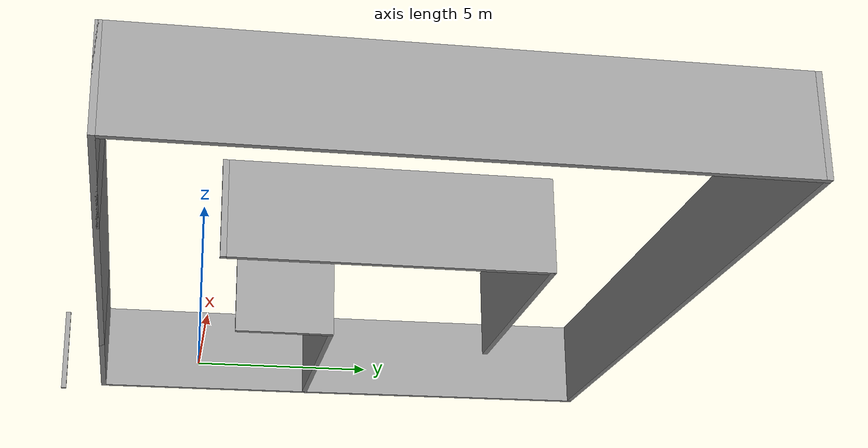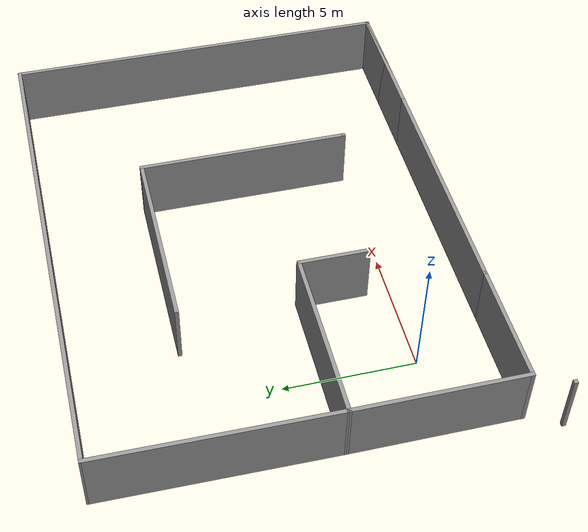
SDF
<?xml version='1.0'?>
<sdf version='1.7'>
  <model name='Mapa1'>
    <pose>6.36905 4.07873 0 0 -0 0</pose>
    <link name='Wall_10'>
      <collision name='Wall_10_Collision'>
        <geometry>
          <box>
            <size>6.75 0.15 2.5</size>
          </box>
        </geometry>
        <pose>0 0 1.25 0 -0 0</pose>
      </collision>
      <visual name='Wall_10_Visual'>
        <pose>0 0 1.25 0 -0 0</pose>
        <geometry>
          <box>
            <size>6.75 0.15 2.5</size>
          </box>
        </geometry>
        <material>
          <script>
            <uri>file://media/materials/scripts/gazebo.material</uri>
            <name>Gazebo/Grey</name>
          </script>
          <ambient>1 1 1 1</ambient>
        </material>
        <meta>
          <layer>0</layer>
        </meta>
      </visual>
      <pose>-6.11846 -0.56705 0 0 -0 0</pose>
    </link>
    <link name='Wall_11'>
      <collision name='Wall_11_Collision'>
        <geometry>
          <box>
            <size>2.75 0.15 2.5</size>
          </box>
        </geometry>
        <pose>0 0 1.25 0 -0 0</pose>
      </collision>
      <visual name='Wall_11_Visual'>
        <pose>0 0 1.25 0 -0 0</pose>
        <geometry>
          <box>
            <size>2.75 0.15 2.5</size>
          </box>
        </geometry>
        <material>
          <script>
            <uri>file://media/materials/scripts/gazebo.material</uri>
            <name>Gazebo/Grey</name>
          </script>
          <ambient>1 1 1 1</ambient>
        </material>
        <meta>
          <layer>0</layer>
        </meta>
      </visual>
      <pose>-2.81846 -1.86705 0 0 -0 -1.5708</pose>
    </link>
    <link name='Wall_14'>
      <collision name='Wall_14_Collision'>
        <geometry>
          <box>
            <size>15 0.15 2.5</size>
          </box>
        </geometry>
        <pose>0 0 1.25 0 -0 0</pose>
      </collision>
      <visual name='Wall_14_Visual'>
        <pose>0 0 1.25 0 -0 0</pose>
        <geometry>
          <box>
            <size>15 0.15 2.5</size>
          </box>
        </geometry>
        <material>
          <script>
            <uri>file://media/materials/scripts/gazebo.material</uri>
            <name>Gazebo/Grey</name>
          </script>
          <ambient>1 1 1 1</ambient>
        </material>
        <meta>
          <layer>0</layer>
        </meta>
      </visual>
      <pose>2.60654 -6.91705 0 0 -0 0</pose>
    </link>
    <link name='Wall_15'>
      <collision name='Wall_15_Collision'>
        <geometry>
          <box>
            <size>5.25 0.15 2.5</size>
          </box>
        </geometry>
        <pose>0 0 1.25 0 -0 0</pose>
      </collision>
      <visual name='Wall_15_Visual'>
        <pose>0 0 1.25 0 -0 0</pose>
        <geometry>
          <box>
            <size>5.25 0.15 2.5</size>
          </box>
        </geometry>
        <material>
          <script>
            <uri>file://media/materials/scripts/gazebo.material</uri>
            <name>Gazebo/Grey</name>
          </script>
          <ambient>1 1 1 1</ambient>
        </material>
        <meta>
          <layer>0</layer>
        </meta>
      </visual>
      <pose>7.48154 -6.91705 0 0 -0 3.14159</pose>
    </link>
    <link name='Wall_17'>
      <collision name='Wall_17_Collision'>
        <geometry>
          <box>
            <size>15.25 0.15 2.5</size>
          </box>
        </geometry>
        <pose>0 0 1.25 0 -0 0</pose>
      </collision>
      <visual name='Wall_17_Visual'>
        <pose>0 0 1.25 0 -0 0</pose>
        <geometry>
          <box>
            <size>15.25 0.15 2.5</size>
          </box>
        </geometry>
        <material>
          <script>
            <uri>file://media/materials/scripts/gazebo.material</uri>
            <name>Gazebo/Grey</name>
          </script>
          <ambient>1 1 1 1</ambient>
        </material>
        <meta>
          <layer>0</layer>
        </meta>
      </visual>
      <pose>10.0315 0.63295 0 0 -0 1.5708</pose>
    </link>
    <link name='Wall_2'>
      <collision name='Wall_2_Collision'>
        <geometry>
          <box>
            <size>0.15 0.15 2.5</size>
          </box>
        </geometry>
        <pose>0 0 1.25 0 -0 0</pose>
      </collision>
      <visual name='Wall_2_Visual'>
        <pose>0 0 1.25 0 -0 0</pose>
        <geometry>
          <box>
            <size>0.15 0.15 2.5</size>
          </box>
        </geometry>
        <material>
          <script>
            <uri>file://media/materials/scripts/gazebo.material</uri>
            <name>Gazebo/Grey</name>
          </script>
          <ambient>1 1 1 1</ambient>
        </material>
        <meta>
          <layer>0</layer>
        </meta>
      </visual>
      <pose>-10.0315 -8.1838 0 0 -0 0</pose>
    </link>
    <link name='Wall_20'>
      <collision name='Wall_20_Collision'>
        <geometry>
          <box>
            <size>19.5 0.15 2.5</size>
          </box>
        </geometry>
        <pose>0 0 1.25 0 -0 0</pose>
      </collision>
      <visual name='Wall_20_Visual'>
        <pose>0 0 1.25 0 -0 0</pose>
        <geometry>
          <box>
            <size>19.5 0.15 2.5</size>
          </box>
        </geometry>
        <material>
          <script>
            <uri>file://media/materials/scripts/gazebo.material</uri>
            <name>Gazebo/Grey</name>
          </script>
          <ambient>1 1 1 1</ambient>
        </material>
        <meta>
          <layer>0</layer>
        </meta>
      </visual>
      <pose>0.356542 8.18295 0 0 -0 3.14159</pose>
    </link>
    <link name='Wall_21'>
      <collision name='Wall_21_Collision'>
        <geometry>
          <box>
            <size>8.90057 0.15 2.5</size>
          </box>
        </geometry>
        <pose>0 0 1.25 0 -0 0</pose>
      </collision>
      <visual name='Wall_21_Visual'>
        <pose>0 0 1.25 0 -0 0</pose>
        <geometry>
          <box>
            <size>8.90057 0.15 2.5</size>
          </box>
        </geometry>
        <material>
          <script>
            <uri>file://media/materials/scripts/gazebo.material</uri>
            <name>Gazebo/Grey</name>
          </script>
          <ambient>1 1 1 1</ambient>
        </material>
        <meta>
          <layer>0</layer>
        </meta>
      </visual>
      <pose>-9.36846 3.80795 0 0 -0 -1.58222</pose>
    </link>
    <link name='Wall_22'>
      <collision name='Wall_22_Collision'>
        <geometry>
          <box>
            <size>0.15 0.15 2.5</size>
          </box>
        </geometry>
        <pose>0 0 1.25 0 -0 0</pose>
      </collision>
      <visual name='Wall_22_Visual'>
        <pose>0 0 1.25 0 -0 0</pose>
        <geometry>
          <box>
            <size>0.15 0.15 2.5</size>
          </box>
        </geometry>
        <material>
          <script>
            <uri>file://media/materials/scripts/gazebo.material</uri>
            <name>Gazebo/Grey</name>
          </script>
          <ambient>1 1 1 1</ambient>
        </material>
        <meta>
          <layer>0</layer>
        </meta>
      </visual>
      <pose>-9.41846 -0.56705 0 0 -0 0</pose>
    </link>
    <link name='Wall_24'>
      <collision name='Wall_24_Collision'>
        <geometry>
          <box>
            <size>7.5 0.15 2.5</size>
          </box>
        </geometry>
        <pose>0 0 1.25 0 -0 0</pose>
      </collision>
      <visual name='Wall_24_Visual'>
        <pose>0 0 1.25 0 -0 0</pose>
        <geometry>
          <box>
            <size>7.5 0.15 2.5</size>
          </box>
        </geometry>
        <material>
          <script>
            <uri>file://media/materials/scripts/gazebo.material</uri>
            <name>Gazebo/Grey</name>
          </script>
          <ambient>1 1 1 1</ambient>
        </material>
        <meta>
          <layer>0</layer>
        </meta>
      </visual>
      <pose>-0.342706 4.14199 0 0 -0 0</pose>
    </link>
    <link name='Wall_25'>
      <collision name='Wall_25_Collision'>
        <geometry>
          <box>
            <size>8.25 0.15 2.5</size>
          </box>
        </geometry>
        <pose>0 0 1.25 0 -0 0</pose>
      </collision>
      <visual name='Wall_25_Visual'>
        <pose>0 0 1.25 0 -0 0</pose>
        <geometry>
          <box>
            <size>8.25 0.15 2.5</size>
          </box>
        </geometry>
        <material>
          <script>
            <uri>file://media/materials/scripts/gazebo.material</uri>
            <name>Gazebo/Grey</name>
          </script>
          <ambient>1 1 1 1</ambient>
        </material>
        <meta>
          <layer>0</layer>
        </meta>
      </visual>
      <pose>3.33229 0.091994 0 0 -0 -1.5708</pose>
    </link>
    <link name='Wall_26'>
      <collision name='Wall_26_Collision'>
        <geometry>
          <box>
            <size>0.15 0.15 2.5</size>
          </box>
        </geometry>
        <pose>0 0 1.25 0 -0 0</pose>
      </collision>
      <visual name='Wall_26_Visual'>
        <pose>0 0 1.25 0 -0 0</pose>
        <geometry>
          <box>
            <size>0.15 0.15 2.5</size>
          </box>
        </geometry>
        <material>
          <script>
            <uri>file://media/materials/scripts/gazebo.material</uri>
            <name>Gazebo/Grey</name>
          </script>
          <ambient>1 1 1 1</ambient>
        </material>
        <meta>
          <layer>0</layer>
        </meta>
      </visual>
      <pose>3.33229 -3.95801 0 0 -0 0</pose>
    </link>
    <link name='Wall_8'>
      <collision name='Wall_8_Collision'>
        <geometry>
          <box>
            <size>4.75 0.15 2.5</size>
          </box>
        </geometry>
        <pose>0 0 1.25 0 -0 0</pose>
      </collision>
      <visual name='Wall_8_Visual'>
        <pose>0 0 1.25 0 -0 0</pose>
        <geometry>
          <box>
            <size>4.75 0.15 2.5</size>
          </box>
        </geometry>
        <material>
          <script>
            <uri>file://media/materials/scripts/gazebo.material</uri>
            <name>Gazebo/Grey</name>
          </script>
          <ambient>1 1 1 1</ambient>
        </material>
        <meta>
          <layer>0</layer>
        </meta>
      </visual>
      <pose>-7.11846 -6.91705 0 0 -0 3.14159</pose>
    </link>
    <link name='Wall_9'>
      <collision name='Wall_9_Collision'>
        <geometry>
          <box>
            <size>6.5 0.15 2.5</size>
          </box>
        </geometry>
        <pose>0 0 1.25 0 -0 0</pose>
      </collision>
      <visual name='Wall_9_Visual'>
        <pose>0 0 1.25 0 -0 0</pose>
        <geometry>
          <box>
            <size>6.5 0.15 2.5</size>
          </box>
        </geometry>
        <material>
          <script>
            <uri>file://media/materials/scripts/gazebo.material</uri>
            <name>Gazebo/Grey</name>
          </script>
          <ambient>1 1 1 1</ambient>
        </material>
        <meta>
          <layer>0</layer>
        </meta>
      </visual>
      <pose>-9.41846 -3.74205 0 0 -0 1.5708</pose>
    </link>
    <static>1</static>
  </model>
</sdf>
